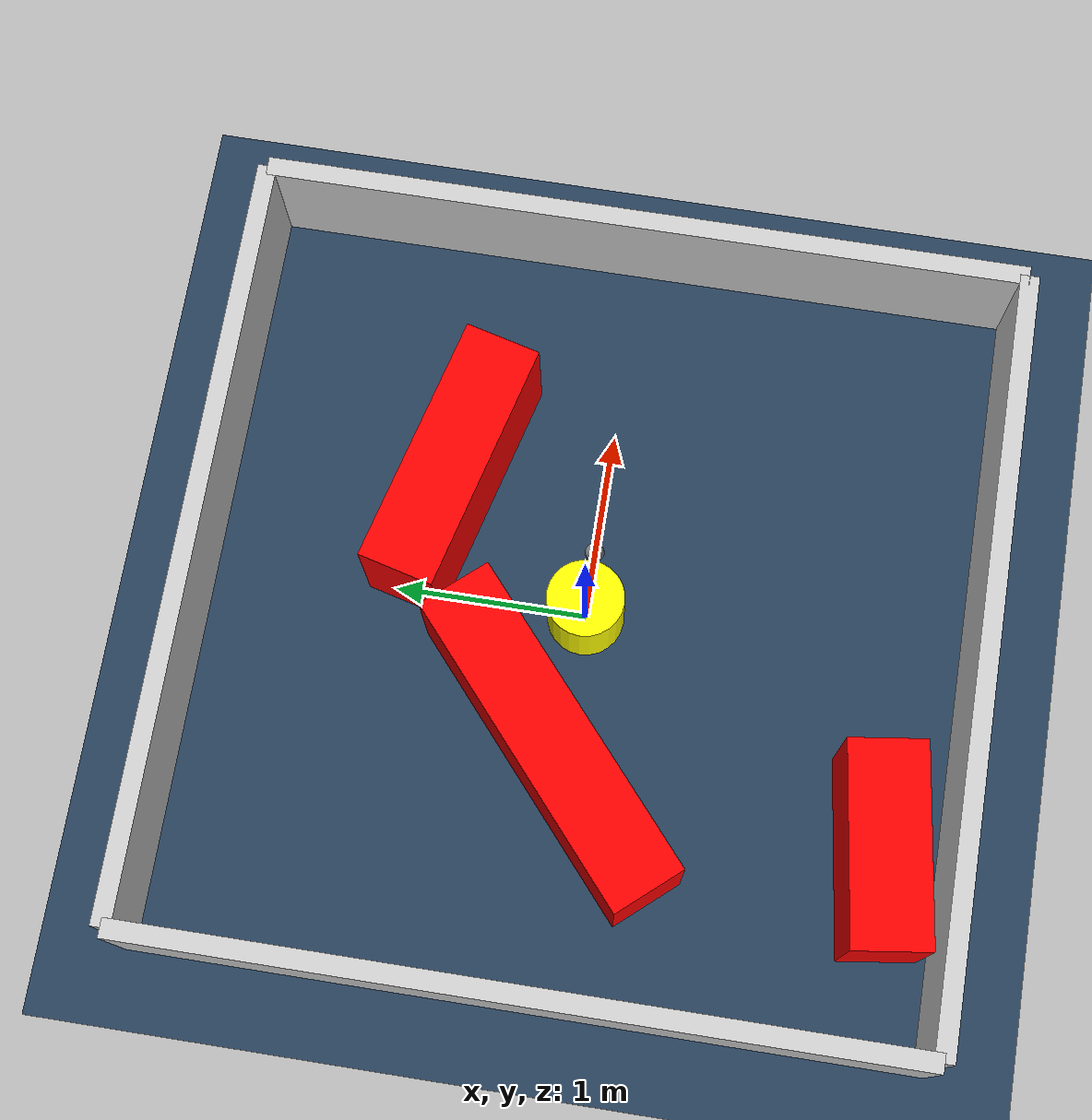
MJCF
<?xml version="1.0" ?>
<mujoco model="generated_environment">
  <option timestep="0.01" integrator="RK4" cone="elliptic"/>
  <default>
    <geom density="1"/>
  </default>
  <asset>
    <texture builtin="gradient" height="3072" rgb1="0.3 0.5 0.7" rgb2="0 0 0" type="skybox" width="512"/>
    <texture builtin="checker" height="300" mark="edge" markrgb="0.8 0.8 0.8" name="groundplane" rgb1="0.2 0.3 0.4" rgb2="0.1 0.2 0.3" type="2d" width="300"/>
    <material name="groundplane" reflectance="0.2" texrepeat="5 5" texture="groundplane" texuniform="true"/>
    <material name="robot" rgba="0.0 1.0 0.0 1"/>
  </asset>
  <worldbody>
    <light dir="0 0 -1" directional="true" pos="0 0 1.5"/>
    <geom condim="4" friction="1.0 0.005 0.001" material="groundplane" name="floor" size="0 0 0.05" type="plane"/>
    <body name="walls">
      <geom name="wall_1" condim="4" pos="-2.0 0.0 0.3" rgba="0.800000011920929 0.800000011920929 0.800000011920929 1.0" size="0.05 2.0 0.3" type="box"/>
      <geom name="wall_2" condim="4" pos="2.0 0.0 0.3" rgba="0.800000011920929 0.800000011920929 0.800000011920929 1.0" size="0.05 2.0 0.3" type="box"/>
      <geom name="wall_3" condim="4" pos="0.0 -2.0 0.3" rgba="0.800000011920929 0.800000011920929 0.800000011920929 1.0" size="2.0 0.05 0.3" type="box"/>
      <geom name="wall_4" condim="4" pos="0.0 2.0 0.3" rgba="0.800000011920929 0.800000011920929 0.800000011920929 1.0" size="2.0 0.05 0.3" type="box"/>
    </body>
    <body name="robot">
      <joint name="joint_x" type="slide" pos="0 0 0" axis="1 0 0"/>
      <joint name="joint_y" type="slide" pos="0 0 0" axis="0 1 0"/>
      <geom name="robot" type="sphere" pos="0.3 0.0 0.2" size="0.05" mass="5." friction="1.0 0.005 0.0001" condim="4" rgba="0.5 0.5 0.5 1.0"/>
      <site name="sensor_ball"/>
    </body>
    <body name="obstacle_movable_1">
      <geom name="obstacle_movable_1" condim="4" pos="0.0 0.0 0.2" euler="0 0 0.0" friction="1.0 0.005 0.001" rgba="1.0 1.0 0.0 1.0" size="0.2 0.2 0.0" type="cylinder" mass="0.1"/>
      <joint type="free"/>
    </body>
    <body name="obstacle_2_static">
      <geom name="obstacle_2_static" condim="4" pos="-1.0216205099995905 -1.6317972999795711 0.3" euler="0 0 187.79034217638323" friction="1.0 0.005 0.001" rgba="1 0 0 1" size="0.5102640127364582 0.2 0.3" type="box"/>
    </body>
    <body name="obstacle_3_static">
      <geom name="obstacle_3_static" condim="4" pos="0.5899132630423072 0.7841484997210435 0.3" euler="0 0 345.82638488943854" friction="1.0 0.005 0.001" rgba="1 0 0 1" size="0.6671683661249858 0.2 0.3" type="box"/>
    </body>
    <body name="obstacle_4_static">
      <geom name="obstacle_4_static" condim="4" pos="-0.7548340210174191 0.05694439825216291 0.3" euler="0 0 41.18780093300468" friction="1.0 0.005 0.001" rgba="1 0 0 1" size="0.896712983056341 0.2 0.3" type="box"/>
    </body>
  </worldbody>
  <actuator>
    <motor name="actuator_x" joint="joint_x" gear="1" ctrlrange="-1 1"/>
    <motor name="actuator_y" joint="joint_y" gear="1" ctrlrange="-1 1"/>
  </actuator>
</mujoco>
